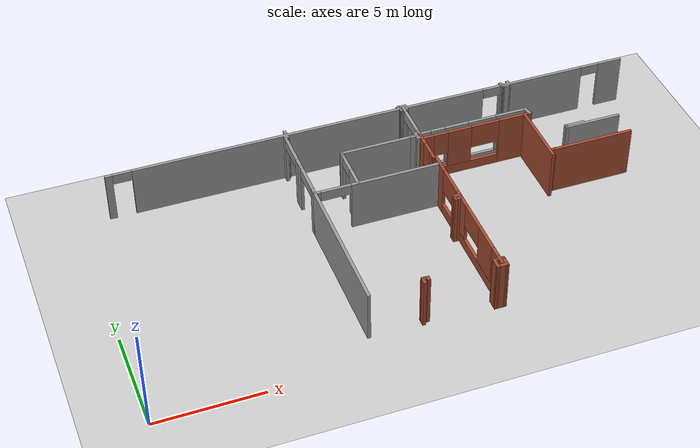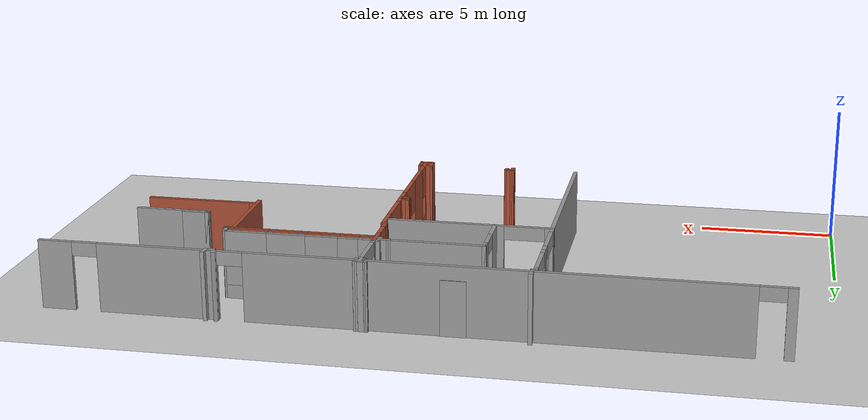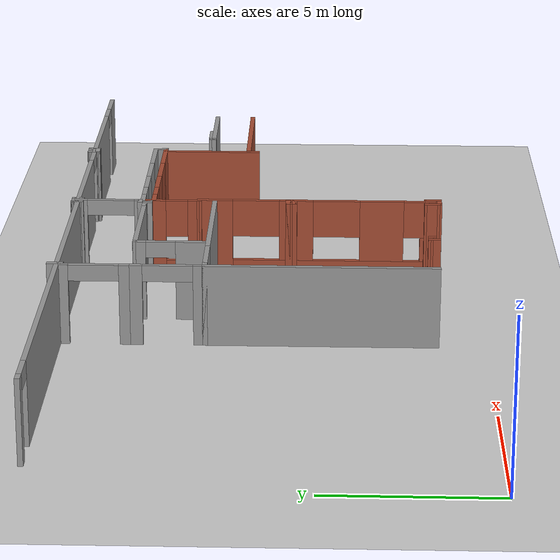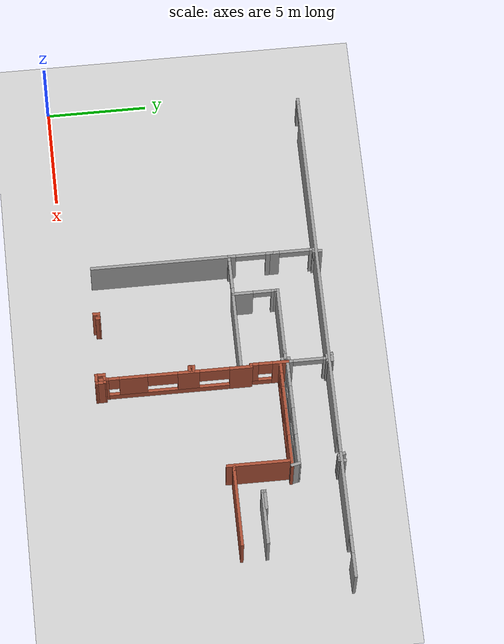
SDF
<sdf version="1.6">
 <world name="default">
  <model name="ground_plane">
   <static>1</static>
   <link name="link">
    <collision name="collision">
     <geometry><plane><normal>0 0 1</normal><size>100 100</size></plane></geometry>
     <surface><friction><ode><mu>100</mu><mu2>50</mu2></ode></friction></surface>
    </collision>
    <visual name="visual">
     <cast_shadows>0</cast_shadows>
     <geometry><plane><normal>0 0 1</normal><size>100 100</size></plane></geometry>
     <material>
      <script><uri>file://media/materials/scripts/gazebo.material</uri><name>Gazebo/Grey</name></script>
     </material>
    </visual>
   </link>
  </model>
  <model name="CVSSP">
   <pose>23.8714 24.094 0 0 -0 0</pose>
   <link name="Door_85">
    <collision name="Door_85_Collision">
     <geometry><box><size>0.9 0.17 2</size></box></geometry>
     <pose>0 0 1 0 -0 0</pose>
    </collision>
    <visual name="Door_85_Visual">
     <pose>0 0 1 0 -0 0</pose>
     <geometry><box><size>0.9 0.17 2</size></box></geometry>
     <material>
      <script><uri>file://media/materials/scripts/gazebo.material</uri><name>Gazebo/Grey</name></script>
     </material>
    </visual>
    <pose>-11.2111 -11.3756 0 0 -0 0</pose>
   </link>
   <link name="Wall_507">
    <collision name="Wall_507_Collision">
     <geometry><box><size>3.25 0.15 2.5</size></box></geometry>
     <pose>0 0 1.25 0 -0 0</pose>
    </collision>
    <visual name="Wall_507_Visual">
     <pose>0 0 1.25 0 -0 0</pose>
     <geometry><box><size>3.25 0.15 2.5</size></box></geometry>
     <material>
      <script><uri>file://media/materials/scripts/gazebo.material</uri><name>Gazebo/Bricks</name></script>
      <ambient>1 1 1 1</ambient>
     </material>
    </visual>
    <pose>-2.87053 -15.3773 0 0 -0 1.5708</pose>
   </link>
   <link name="Wall_517">
    <pose>-9.53376 -11.3942 0 0 -0 3.14159</pose>
    <visual name="Wall_517_Visual_0">
     <pose>-12.2631 0 1.25 0 -0 0</pose>
     <geometry><box><size>1.22376 0.15 2.5</size></box></geometry>
     <material>
      <script><uri>file://media/materials/scripts/gazebo.material</uri><name>Gazebo/Grey</name></script>
      <ambient>0.588235 0.588235 0.588235 1</ambient>
     </material>
    </visual>
    <collision name="Wall_517_Collision_0">
     <geometry><box><size>1.22376 0.15 2.5</size></box></geometry>
     <pose>-12.2631 0 1.25 0 -0 0</pose>
    </collision>
    <visual name="Wall_517_Visual_1">
     <pose>-8.60772 0 1.25 0 -0 0</pose>
     <geometry><box><size>4.28704 0.15 2.5</size></box></geometry>
     <material>
      <script><uri>file://media/materials/scripts/gazebo.material</uri><name>Gazebo/Grey</name></script>
      <ambient>0.588235 0.588235 0.588235 1</ambient>
     </material>
    </visual>
    <collision name="Wall_517_Collision_1">
     <geometry><box><size>4.28704 0.15 2.5</size></box></geometry>
     <pose>-8.60772 0 1.25 0 -0 0</pose>
    </collision>
    <visual name="Wall_517_Visual_2">
     <pose>3.03485 0 1.25 0 -0 0</pose>
     <geometry><box><size>17.1981 0.15 2.5</size></box></geometry>
     <material>
      <script><uri>file://media/materials/scripts/gazebo.material</uri><name>Gazebo/Grey</name></script>
      <ambient>0.588235 0.588235 0.588235 1</ambient>
     </material>
    </visual>
    <collision name="Wall_517_Collision_2">
     <geometry><box><size>17.1981 0.15 2.5</size></box></geometry>
     <pose>3.03485 0 1.25 0 -0 0</pose>
    </collision>
    <visual name="Wall_517_Visual_3">
     <pose>12.7044 0 1.25 0 -0 0</pose>
     <geometry><box><size>0.341103 0.15 2.5</size></box></geometry>
     <material>
      <script><uri>file://media/materials/scripts/gazebo.material</uri><name>Gazebo/Grey</name></script>
      <ambient>0.588235 0.588235 0.588235 1</ambient>
     </material>
    </visual>
    <collision name="Wall_517_Collision_3">
     <geometry><box><size>0.341103 0.15 2.5</size></box></geometry>
     <pose>12.7044 0 1.25 0 -0 0</pose>
    </collision>
    <visual name="Wall_517_Visual_4">
     <pose>-11.2012 0 2.25 0 -0 0</pose>
     <geometry><box><size>0.9 0.15 0.5</size></box></geometry>
     <material>
      <script><uri>file://media/materials/scripts/gazebo.material</uri><name>Gazebo/Grey</name></script>
      <ambient>0.588235 0.588235 0.588235 1</ambient>
     </material>
    </visual>
    <collision name="Wall_517_Collision_4">
     <geometry><box><size>0.9 0.15 0.5</size></box></geometry>
     <pose>-11.2012 0 2.25 0 -0 0</pose>
    </collision>
    <visual name="Wall_517_Visual_5">
     <pose>-6.0142 0 2.25 0 -0 0</pose>
     <geometry><box><size>0.9 0.15 0.5</size></box></geometry>
     <material>
      <script><uri>file://media/materials/scripts/gazebo.material</uri><name>Gazebo/Grey</name></script>
      <ambient>0.588235 0.588235 0.588235 1</ambient>
     </material>
    </visual>
    <collision name="Wall_517_Collision_5">
     <geometry><box><size>0.9 0.15 0.5</size></box></geometry>
     <pose>-6.0142 0 2.25 0 -0 0</pose>
    </collision>
    <visual name="Wall_517_Visual_6">
     <pose>12.0839 0 2.25 0 -0 0</pose>
     <geometry><box><size>0.9 0.15 0.5</size></box></geometry>
     <material>
      <script><uri>file://media/materials/scripts/gazebo.material</uri><name>Gazebo/Grey</name></script>
      <ambient>0.588235 0.588235 0.588235 1</ambient>
     </material>
    </visual>
    <collision name="Wall_517_Collision_6">
     <geometry><box><size>0.9 0.15 0.5</size></box></geometry>
     <pose>12.0839 0 2.25 0 -0 0</pose>
    </collision>
   </link>
   <link name="Wall_537">
    <pose>-8.036 -12.4082 0 0 0 -1.5708</pose>
    <visual name="Wall_537_Visual_0">
     <pose>-0.92041 0 1.25 0 -0 0</pose>
     <geometry><box><size>0.409181 0.15 2.5</size></box></geometry>
     <material>
      <script><uri>file://media/materials/scripts/gazebo.material</uri><name>Gazebo/Grey</name></script>
      <ambient>1 1 1 1</ambient>
     </material>
    </visual>
    <collision name="Wall_537_Collision_0">
     <geometry><box><size>0.409181 0.15 2.5</size></box></geometry>
     <pose>-0.92041 0 1.25 0 -0 0</pose>
    </collision>
    <visual name="Wall_537_Visual_1">
     <pose>0.95091 0 1.25 0 -0 0</pose>
     <geometry><box><size>0.34818 0.15 2.5</size></box></geometry>
     <material>
      <script><uri>file://media/materials/scripts/gazebo.material</uri><name>Gazebo/Grey</name></script>
      <ambient>1 1 1 1</ambient>
     </material>
    </visual>
    <collision name="Wall_537_Collision_1">
     <geometry><box><size>0.34818 0.15 2.5</size></box></geometry>
     <pose>0.95091 0 1.25 0 -0 0</pose>
    </collision>
    <visual name="Wall_537_Visual_2">
     <pose>0.0305 0 2.25 0 -0 0</pose>
     <geometry><box><size>1.49264 0.15 0.5</size></box></geometry>
     <material>
      <script><uri>file://media/materials/scripts/gazebo.material</uri><name>Gazebo/Grey</name></script>
      <ambient>1 1 1 1</ambient>
     </material>
    </visual>
    <collision name="Wall_537_Collision_2">
     <geometry><box><size>1.49264 0.15 0.5</size></box></geometry>
     <pose>0.0305 0 2.25 0 -0 0</pose>
    </collision>
   </link>
   <link name="Wall_538">
    <pose>-5.361 -13.4582 0 0 -0 0</pose>
    <visual name="Wall_538_Visual_0">
     <pose>-2.43267 0 1.25 0 -0 0</pose>
     <geometry><box><size>0.634665 0.15 2.5</size></box></geometry>
     <material>
      <script><uri>file://media/materials/scripts/gazebo.material</uri><name>Gazebo/Grey</name></script>
      <ambient>0.588235 0.588235 0.588235 1</ambient>
     </material>
    </visual>
    <collision name="Wall_538_Collision_0">
     <geometry><box><size>0.634665 0.15 2.5</size></box></geometry>
     <pose>-2.43267 0 1.25 0 -0 0</pose>
    </collision>
    <visual name="Wall_538_Visual_1">
     <pose>0.317332 0 0.25 0 -0 0</pose>
     <geometry><box><size>4.86533 0.15 0.5</size></box></geometry>
     <material>
      <script><uri>file://media/materials/scripts/gazebo.material</uri><name>Gazebo/Grey</name></script>
      <ambient>0.588235 0.588235 0.588235 1</ambient>
     </material>
    </visual>
    <collision name="Wall_538_Collision_1">
     <geometry><box><size>4.86533 0.15 0.5</size></box></geometry>
     <pose>0.317332 0 0.25 0 -0 0</pose>
    </collision>
    <visual name="Wall_538_Visual_2">
     <pose>-0.810818 0 1.5 0 -0 0</pose>
     <geometry><box><size>1.15893 0.15 2</size></box></geometry>
     <material>
      <script><uri>file://media/materials/scripts/gazebo.material</uri><name>Gazebo/Grey</name></script>
      <ambient>0.588235 0.588235 0.588235 1</ambient>
     </material>
    </visual>
    <collision name="Wall_538_Collision_2">
     <geometry><box><size>1.15893 0.15 2</size></box></geometry>
     <pose>-0.810818 0 1.5 0 -0 0</pose>
    </collision>
    <visual name="Wall_538_Visual_3">
     <pose>1.95518 0 1.5 0 -0 0</pose>
     <geometry><box><size>1.58965 0.15 2</size></box></geometry>
     <material>
      <script><uri>file://media/materials/scripts/gazebo.material</uri><name>Gazebo/Grey</name></script>
      <ambient>0.588235 0.588235 0.588235 1</ambient>
     </material>
    </visual>
    <collision name="Wall_538_Collision_3">
     <geometry><box><size>1.58965 0.15 2</size></box></geometry>
     <pose>1.95518 0 1.5 0 -0 0</pose>
    </collision>
    <visual name="Wall_538_Visual_4">
     <pose>-1.75281 0 1.9 0 -0 0</pose>
     <geometry><box><size>0.72505 0.15 1.2</size></box></geometry>
     <material>
      <script><uri>file://media/materials/scripts/gazebo.material</uri><name>Gazebo/Grey</name></script>
      <ambient>0.588235 0.588235 0.588235 1</ambient>
     </material>
    </visual>
    <collision name="Wall_538_Collision_4">
     <geometry><box><size>0.72505 0.15 1.2</size></box></geometry>
     <pose>-1.75281 0 1.9 0 -0 0</pose>
    </collision>
    <visual name="Wall_538_Visual_5">
     <pose>0.4645 0 1.9 0 -0 0</pose>
     <geometry><box><size>1.3917 0.15 1.2</size></box></geometry>
     <material>
      <script><uri>file://media/materials/scripts/gazebo.material</uri><name>Gazebo/Grey</name></script>
      <ambient>0.588235 0.588235 0.588235 1</ambient>
     </material>
    </visual>
    <collision name="Wall_538_Collision_5">
     <geometry><box><size>1.3917 0.15 1.2</size></box></geometry>
     <pose>0.4645 0 1.9 0 -0 0</pose>
    </collision>
   </link>
   <link name="Wall_539">
    <collision name="Wall_539_Collision">
     <geometry><box><size>0.505851 0.15 2.5</size></box></geometry>
     <pose>0 0 1.25 0 -0 0</pose>
    </collision>
    <visual name="Wall_539_Visual">
     <pose>0 0 1.25 0 -0 0</pose>
     <geometry><box><size>0.505851 0.15 2.5</size></box></geometry>
     <material>
      <script><uri>file://media/materials/scripts/gazebo.material</uri><name>Gazebo/Grey</name></script>
      <ambient>1 1 1 1</ambient>
     </material>
    </visual>
    <pose>-2.64978 -13.6324 0 0 0 -1.3658</pose>
   </link>
   <link name="Wall_541">
    <pose>-8.03948 -14.3557 0 0 0 -1.57468</pose>
    <visual name="Wall_541_Visual_0">
     <pose>-0.567331 0 1.25 0 -0 0</pose>
     <geometry><box><size>0.810426 0.15 2.5</size></box></geometry>
     <material>
      <script><uri>file://media/materials/scripts/gazebo.material</uri><name>Gazebo/Bricks</name></script>
      <ambient>1 1 1 1</ambient>
     </material>
    </visual>
    <collision name="Wall_541_Collision_0">
     <geometry><box><size>0.810426 0.15 2.5</size></box></geometry>
     <pose>-0.567331 0 1.25 0 -0 0</pose>
    </collision>
    <visual name="Wall_541_Visual_1">
     <pose>0.405213 0 0.25 0 -0 0</pose>
     <geometry><box><size>1.13466 0.15 0.5</size></box></geometry>
     <material>
      <script><uri>file://media/materials/scripts/gazebo.material</uri><name>Gazebo/Bricks</name></script>
      <ambient>1 1 1 1</ambient>
     </material>
    </visual>
    <collision name="Wall_541_Collision_1">
     <geometry><box><size>1.13466 0.15 0.5</size></box></geometry>
     <pose>0.405213 0 0.25 0 -0 0</pose>
    </collision>
    <visual name="Wall_541_Visual_2">
     <pose>0.750947 0 1.5 0 -0 0</pose>
     <geometry><box><size>0.443194 0.15 2</size></box></geometry>
     <material>
      <script><uri>file://media/materials/scripts/gazebo.material</uri><name>Gazebo/Bricks</name></script>
      <ambient>1 1 1 1</ambient>
     </material>
    </visual>
    <collision name="Wall_541_Collision_2">
     <geometry><box><size>0.443194 0.15 2</size></box></geometry>
     <pose>0.750947 0 1.5 0 -0 0</pose>
    </collision>
    <visual name="Wall_541_Visual_3">
     <pose>0.183616 0 1.9 0 -0 0</pose>
     <geometry><box><size>0.691468 0.15 1.2</size></box></geometry>
     <material>
      <script><uri>file://media/materials/scripts/gazebo.material</uri><name>Gazebo/Bricks</name></script>
      <ambient>1 1 1 1</ambient>
     </material>
    </visual>
    <collision name="Wall_541_Collision_3">
     <geometry><box><size>0.691468 0.15 1.2</size></box></geometry>
     <pose>0.183616 0 1.9 0 -0 0</pose>
    </collision>
   </link>
   <link name="Wall_542">
    <collision name="Wall_542_Collision">
     <geometry><box><size>0.25 0.15 2.5</size></box></geometry>
     <pose>0 0 1.25 0 -0 0</pose>
    </collision>
    <visual name="Wall_542_Visual">
     <pose>0 0 1.25 0 -0 0</pose>
     <geometry><box><size>0.25 0.15 2.5</size></box></geometry>
     <material>
      <script><uri>file://media/materials/scripts/gazebo.material</uri><name>Gazebo/Bricks</name></script>
      <ambient>1 1 1 1</ambient>
     </material>
    </visual>
    <pose>-7.99297 -15.2533 0 0 -0 0</pose>
   </link>
   <link name="Wall_543">
    <pose>-7.94297 -18.8033 0 0 0 -1.5708</pose>
    <visual name="Wall_543_Visual_0">
     <pose>-3.05686 0 1.25 0 -0 0</pose>
     <geometry><box><size>1.13628 0.15 2.5</size></box></geometry>
     <material>
      <script><uri>file://media/materials/scripts/gazebo.material</uri><name>Gazebo/Bricks</name></script>
      <ambient>1 1 1 1</ambient>
     </material>
    </visual>
    <collision name="Wall_543_Collision_0">
     <geometry><box><size>1.13628 0.15 2.5</size></box></geometry>
     <pose>-3.05686 0 1.25 0 -0 0</pose>
    </collision>
    <visual name="Wall_543_Visual_1">
     <pose>0.568139 0 0.25 0 -0 0</pose>
     <geometry><box><size>6.11372 0.15 0.5</size></box></geometry>
     <material>
      <script><uri>file://media/materials/scripts/gazebo.material</uri><name>Gazebo/Bricks</name></script>
      <ambient>1 1 1 1</ambient>
     </material>
    </visual>
    <collision name="Wall_543_Collision_1">
     <geometry><box><size>6.11372 0.15 0.5</size></box></geometry>
     <pose>0.568139 0 0.25 0 -0 0</pose>
    </collision>
    <visual name="Wall_543_Visual_2">
     <pose>-0.462946 0 1.5 0 -0 0</pose>
     <geometry><box><size>1.07655 0.15 2</size></box></geometry>
     <material>
      <script><uri>file://media/materials/scripts/gazebo.material</uri><name>Gazebo/Bricks</name></script>
      <ambient>1 1 1 1</ambient>
     </material>
    </visual>
    <collision name="Wall_543_Collision_2">
     <geometry><box><size>1.07655 0.15 2</size></box></geometry>
     <pose>-0.462946 0 1.5 0 -0 0</pose>
    </collision>
    <visual name="Wall_543_Visual_3">
     <pose>2.25573 0 1.5 0 -0 0</pose>
     <geometry><box><size>1.39706 0.15 2</size></box></geometry>
     <material>
      <script><uri>file://media/materials/scripts/gazebo.material</uri><name>Gazebo/Bricks</name></script>
      <ambient>1 1 1 1</ambient>
     </material>
    </visual>
    <collision name="Wall_543_Collision_3">
     <geometry><box><size>1.39706 0.15 2</size></box></geometry>
     <pose>2.25573 0 1.5 0 -0 0</pose>
    </collision>
    <visual name="Wall_543_Visual_4">
     <pose>2.25573 0 1.5 0 -0 0</pose>
     <geometry><box><size>1.39706 0.15 2</size></box></geometry>
     <material>
      <script><uri>file://media/materials/scripts/gazebo.material</uri><name>Gazebo/Bricks</name></script>
      <ambient>1 1 1 1</ambient>
     </material>
    </visual>
    <collision name="Wall_543_Collision_4">
     <geometry><box><size>1.39706 0.15 2</size></box></geometry>
     <pose>2.25573 0 1.5 0 -0 0</pose>
    </collision>
    <visual name="Wall_543_Visual_5">
     <pose>-1.74497 0 1.9 0 -0 0</pose>
     <geometry><box><size>1.4875 0.15 1.2</size></box></geometry>
     <material>
      <script><uri>file://media/materials/scripts/gazebo.material</uri><name>Gazebo/Bricks</name></script>
      <ambient>1 1 1 1</ambient>
     </material>
    </visual>
    <collision name="Wall_543_Collision_5">
     <geometry><box><size>1.4875 0.15 1.2</size></box></geometry>
     <pose>-1.74497 0 1.9 0 -0 0</pose>
    </collision>
    <visual name="Wall_543_Visual_6">
     <pose>0.816261 0 1.9 0 -0 0</pose>
     <geometry><box><size>1.48187 0.15 1.2</size></box></geometry>
     <material>
      <script><uri>file://media/materials/scripts/gazebo.material</uri><name>Gazebo/Bricks</name></script>
      <ambient>1 1 1 1</ambient>
     </material>
    </visual>
    <collision name="Wall_543_Collision_6">
     <geometry><box><size>1.48187 0.15 1.2</size></box></geometry>
     <pose>0.816261 0 1.9 0 -0 0</pose>
    </collision>
    <visual name="Wall_543_Visual_7">
     <pose>3.28963 0 1.9 0 -0 0</pose>
     <geometry><box><size>0.670742 0.15 1.2</size></box></geometry>
     <material>
      <script><uri>file://media/materials/scripts/gazebo.material</uri><name>Gazebo/Bricks</name></script>
      <ambient>1 1 1 1</ambient>
     </material>
    </visual>
    <collision name="Wall_543_Collision_7">
     <geometry><box><size>0.670742 0.15 1.2</size></box></geometry>
     <pose>3.28963 0 1.9 0 -0 0</pose>
    </collision>
    <visual name="Wall_543_Visual_8">
     <pose>3.28963 0 1.9 0 -0 0</pose>
     <geometry><box><size>0.670742 0.15 1.2</size></box></geometry>
     <material>
      <script><uri>file://media/materials/scripts/gazebo.material</uri><name>Gazebo/Bricks</name></script>
      <ambient>1 1 1 1</ambient>
     </material>
    </visual>
    <collision name="Wall_543_Collision_8">
     <geometry><box><size>0.670742 0.15 1.2</size></box></geometry>
     <pose>3.28963 0 1.9 0 -0 0</pose>
    </collision>
   </link>
   <link name="Wall_544">
    <collision name="Wall_544_Collision">
     <geometry><box><size>0.5 0.15 2.5</size></box></geometry>
     <pose>0 0 1.25 0 -0 0</pose>
    </collision>
    <visual name="Wall_544_Visual">
     <pose>0 0 1.25 0 -0 0</pose>
     <geometry><box><size>0.5 0.15 2.5</size></box></geometry>
     <material>
      <script><uri>file://media/materials/scripts/gazebo.material</uri><name>Gazebo/Bricks</name></script>
      <ambient>1 1 1 1</ambient>
     </material>
    </visual>
    <pose>-7.94297 -22.5283 0 0 0 -1.5708</pose>
   </link>
   <link name="Wall_552">
    <pose>-13.9279 -14.6858 0 0 0 -1.57076</pose>
    <visual name="Wall_552_Visual_0">
     <pose>-0.953762 0 1.25 0 -0 0</pose>
     <geometry><box><size>0.377528 0.15 2.5</size></box></geometry>
     <material>
      <script><uri>file://media/materials/scripts/gazebo.material</uri><name>Gazebo/Grey</name></script>
      <ambient>0.588235 0.588235 0.588235 1</ambient>
     </material>
    </visual>
    <collision name="Wall_552_Collision_0">
     <geometry><box><size>0.377528 0.15 2.5</size></box></geometry>
     <pose>-0.953762 0 1.25 0 -0 0</pose>
    </collision>
    <visual name="Wall_552_Visual_1">
     <pose>0.934646 0 1.25 0 -0 0</pose>
     <geometry><box><size>0.415759 0.15 2.5</size></box></geometry>
     <material>
      <script><uri>file://media/materials/scripts/gazebo.material</uri><name>Gazebo/Grey</name></script>
      <ambient>0.588235 0.588235 0.588235 1</ambient>
     </material>
    </visual>
    <collision name="Wall_552_Collision_1">
     <geometry><box><size>0.415759 0.15 2.5</size></box></geometry>
     <pose>0.934646 0 1.25 0 -0 0</pose>
    </collision>
    <visual name="Wall_552_Visual_2">
     <pose>-0.019115 0 2.25 0 -0 0</pose>
     <geometry><box><size>1.49176 0.15 0.5</size></box></geometry>
     <material>
      <script><uri>file://media/materials/scripts/gazebo.material</uri><name>Gazebo/Grey</name></script>
      <ambient>0.588235 0.588235 0.588235 1</ambient>
     </material>
    </visual>
    <collision name="Wall_552_Collision_2">
     <geometry><box><size>1.49176 0.15 0.5</size></box></geometry>
     <pose>-0.019115 0 2.25 0 -0 0</pose>
    </collision>
   </link>
   <link name="Wall_553">
    <pose>-10.9854 -15.7533 0 0 0 -3e-06</pose>
    <visual name="Wall_553_Visual_0">
     <pose>-2.85002 0 1.25 0 -0 0</pose>
     <geometry><box><size>0.334935 0.15 2.5</size></box></geometry>
     <material>
      <script><uri>file://media/materials/scripts/gazebo.material</uri><name>Gazebo/Grey</name></script>
      <ambient>0.588235 0.588235 0.588235 1</ambient>
     </material>
    </visual>
    <collision name="Wall_553_Collision_0">
     <geometry><box><size>0.334935 0.15 2.5</size></box></geometry>
     <pose>-2.85002 0 1.25 0 -0 0</pose>
    </collision>
    <visual name="Wall_553_Visual_1">
     <pose>0.893624 0 1.25 0 -0 0</pose>
     <geometry><box><size>4.24773 0.15 2.5</size></box></geometry>
     <material>
      <script><uri>file://media/materials/scripts/gazebo.material</uri><name>Gazebo/Grey</name></script>
      <ambient>0.588235 0.588235 0.588235 1</ambient>
     </material>
    </visual>
    <collision name="Wall_553_Collision_1">
     <geometry><box><size>4.24773 0.15 2.5</size></box></geometry>
     <pose>0.893624 0 1.25 0 -0 0</pose>
    </collision>
    <visual name="Wall_553_Visual_2">
     <pose>-1.9564 0 2.25 0 -0 0</pose>
     <geometry><box><size>1.45231 0.15 0.5</size></box></geometry>
     <material>
      <script><uri>file://media/materials/scripts/gazebo.material</uri><name>Gazebo/Grey</name></script>
      <ambient>0.588235 0.588235 0.588235 1</ambient>
     </material>
    </visual>
    <collision name="Wall_553_Collision_2">
     <geometry><box><size>1.45231 0.15 0.5</size></box></geometry>
     <pose>-1.9564 0 2.25 0 -0 0</pose>
    </collision>
   </link>
   <link name="Wall_555">
    <pose>-13.9279 -12.5683 0 0 -0 1.5708</pose>
    <visual name="Wall_555_Visual_0">
     <pose>-0.893147 0 1.25 0 -0 0</pose>
     <geometry><box><size>0.463706 0.15 2.5</size></box></geometry>
     <material>
      <script><uri>file://media/materials/scripts/gazebo.material</uri><name>Gazebo/Grey</name></script>
      <ambient>0.588235 0.588235 0.588235 1</ambient>
     </material>
    </visual>
    <collision name="Wall_555_Collision_0">
     <geometry><box><size>0.463706 0.15 2.5</size></box></geometry>
     <pose>-0.893147 0 1.25 0 -0 0</pose>
    </collision>
    <visual name="Wall_555_Visual_1">
     <pose>0.977735 0 1.25 0 -0 0</pose>
     <geometry><box><size>0.29453 0.15 2.5</size></box></geometry>
     <material>
      <script><uri>file://media/materials/scripts/gazebo.material</uri><name>Gazebo/Grey</name></script>
      <ambient>0.588235 0.588235 0.588235 1</ambient>
     </material>
    </visual>
    <collision name="Wall_555_Collision_1">
     <geometry><box><size>0.29453 0.15 2.5</size></box></geometry>
     <pose>0.977735 0 1.25 0 -0 0</pose>
    </collision>
    <visual name="Wall_555_Visual_2">
     <pose>0.084588 0 2.25 0 -0 0</pose>
     <geometry><box><size>1.49177 0.15 0.5</size></box></geometry>
     <material>
      <script><uri>file://media/materials/scripts/gazebo.material</uri><name>Gazebo/Grey</name></script>
      <ambient>0.588235 0.588235 0.588235 1</ambient>
     </material>
    </visual>
    <collision name="Wall_555_Collision_2">
     <geometry><box><size>1.49177 0.15 0.5</size></box></geometry>
     <pose>0.084588 0 2.25 0 -0 0</pose>
    </collision>
   </link>
   <link name="Wall_556">
    <collision name="Wall_556_Collision">
     <geometry><box><size>0.25 0.15 2.5</size></box></geometry>
     <pose>0 0 1.25 0 -0 0</pose>
    </collision>
    <visual name="Wall_556_Visual">
     <pose>0 0 1.25 0 -0 0</pose>
     <geometry><box><size>0.25 0.15 2.5</size></box></geometry>
     <material>
      <script><uri>file://media/materials/scripts/gazebo.material</uri><name>Gazebo/Grey</name></script>
      <ambient>1 1 1 1</ambient>
     </material>
    </visual>
    <pose>-13.8779 -11.5183 0 0 -0 0</pose>
   </link>
   <link name="Wall_557">
    <collision name="Wall_557_Collision">
     <geometry><box><size>0.5 0.15 2.5</size></box></geometry>
     <pose>0 0 1.25 0 -0 0</pose>
    </collision>
    <visual name="Wall_557_Visual">
     <pose>0 0 1.25 0 -0 0</pose>
     <geometry><box><size>0.5 0.15 2.5</size></box></geometry>
     <material>
      <script><uri>file://media/materials/scripts/gazebo.material</uri><name>Gazebo/Grey</name></script>
      <ambient>1 1 1 1</ambient>
     </material>
    </visual>
    <pose>-13.8279 -11.3433 0 0 -0 1.5708</pose>
   </link>
   <link name="Wall_566">
    <pose>-11.8858 -14.6877 0 0 -0 1.5708</pose>
    <visual name="Wall_566_Visual_0">
     <pose>-0.599474 0 1.25 0 -0 0</pose>
     <geometry><box><size>1.05105 0.15 2.5</size></box></geometry>
     <material>
      <script><uri>file://media/materials/scripts/gazebo.material</uri><name>Gazebo/Grey</name></script>
      <ambient>0.588235 0.588235 0.588235 1</ambient>
     </material>
    </visual>
    <collision name="Wall_566_Collision_0">
     <geometry><box><size>1.05105 0.15 2.5</size></box></geometry>
     <pose>-0.599474 0 1.25 0 -0 0</pose>
    </collision>
    <visual name="Wall_566_Visual_1">
     <pose>0.975526 0 1.25 0 -0 0</pose>
     <geometry><box><size>0.298948 0.15 2.5</size></box></geometry>
     <material>
      <script><uri>file://media/materials/scripts/gazebo.material</uri><name>Gazebo/Grey</name></script>
      <ambient>0.588235 0.588235 0.588235 1</ambient>
     </material>
    </visual>
    <collision name="Wall_566_Collision_1">
     <geometry><box><size>0.298948 0.15 2.5</size></box></geometry>
     <pose>0.975526 0 1.25 0 -0 0</pose>
    </collision>
    <visual name="Wall_566_Visual_2">
     <pose>0.376052 0 2.25 0 -0 0</pose>
     <geometry><box><size>0.9 0.15 0.5</size></box></geometry>
     <material>
      <script><uri>file://media/materials/scripts/gazebo.material</uri><name>Gazebo/Grey</name></script>
      <ambient>0.588235 0.588235 0.588235 1</ambient>
     </material>
    </visual>
    <collision name="Wall_566_Collision_2">
     <geometry><box><size>0.9 0.15 0.5</size></box></geometry>
     <pose>0.376052 0 2.25 0 -0 0</pose>
    </collision>
   </link>
   <link name="Wall_567">
    <collision name="Wall_567_Collision">
     <geometry><box><size>0.25 0.15 2.5</size></box></geometry>
     <pose>0 0 1.25 0 -0 0</pose>
    </collision>
    <visual name="Wall_567_Visual">
     <pose>0 0 1.25 0 -0 0</pose>
     <geometry><box><size>0.25 0.15 2.5</size></box></geometry>
     <material>
      <script><uri>file://media/materials/scripts/gazebo.material</uri><name>Gazebo/Grey</name></script>
      <ambient>1 1 1 1</ambient>
     </material>
    </visual>
    <pose>-11.8858 -13.5877 0 0 -0 1.5708</pose>
   </link>
   <link name="Wall_568">
    <collision name="Wall_568_Collision">
     <geometry><box><size>3.5 0.15 2.5</size></box></geometry>
     <pose>0 0 1.25 0 -0 0</pose>
    </collision>
    <visual name="Wall_568_Visual">
     <pose>0 0 1.25 0 -0 0</pose>
     <geometry><box><size>3.5 0.15 2.5</size></box></geometry>
     <material>
      <script><uri>file://media/materials/scripts/gazebo.material</uri><name>Gazebo/Grey</name></script>
      <ambient>0.588235 0.588235 0.588235 1</ambient>
     </material>
    </visual>
    <pose>-10.2108 -13.5377 0 0 -0 0</pose>
   </link>
   <link name="Wall_569">
    <collision name="Wall_569_Collision">
     <geometry><box><size>0.476583 0.15 2.5</size></box></geometry>
     <pose>0 0 1.25 0 -0 0</pose>
    </collision>
    <visual name="Wall_569_Visual">
     <pose>0 0 1.25 0 -0 0</pose>
     <geometry><box><size>0.476583 0.15 2.5</size></box></geometry>
     <material>
      <script><uri>file://media/materials/scripts/gazebo.material</uri><name>Gazebo/Grey</name></script>
      <ambient>1 1 1 1</ambient>
     </material>
    </visual>
    <pose>-8.37248 -13.54 0 0 0 -0.014239</pose>
   </link>
   <link name="Wall_570">
    <collision name="Wall_570_Collision">
     <geometry><box><size>0.307067 0.15 2.5</size></box></geometry>
     <pose>0 0 1.25 0 -0 0</pose>
    </collision>
    <visual name="Wall_570_Visual">
     <pose>0 0 1.25 0 -0 0</pose>
     <geometry><box><size>0.307067 0.15 2.5</size></box></geometry>
     <material>
      <script><uri>file://media/materials/scripts/gazebo.material</uri><name>Gazebo/Grey</name></script>
      <ambient>1 1 1 1</ambient>
     </material>
    </visual>
    <pose>-8.20921 -13.6208 0 0 0 -1.5708</pose>
   </link>
   <link name="Wall_571">
    <collision name="Wall_571_Collision">
     <geometry><box><size>0.25 0.15 2.5</size></box></geometry>
     <pose>0 0 1.25 0 -0 0</pose>
    </collision>
    <visual name="Wall_571_Visual">
     <pose>0 0 1.25 0 -0 0</pose>
     <geometry><box><size>0.25 0.15 2.5</size></box></geometry>
     <material>
      <script><uri>file://media/materials/scripts/gazebo.material</uri><name>Gazebo/Grey</name></script>
      <ambient>1 1 1 1</ambient>
     </material>
    </visual>
    <pose>-8.15921 -13.695 0 0 -0 0</pose>
   </link>
   <link name="Wall_575">
    <collision name="Wall_575_Collision">
     <geometry><box><size>0.275673 0.15 2.5</size></box></geometry>
     <pose>0 0 1.25 0 -0 0</pose>
    </collision>
    <visual name="Wall_575_Visual">
     <pose>0 0 1.25 0 -0 0</pose>
     <geometry><box><size>0.275673 0.15 2.5</size></box></geometry>
     <material>
      <script><uri>file://media/materials/scripts/gazebo.material</uri><name>Gazebo/Grey</name></script>
      <ambient>1 1 1 1</ambient>
     </material>
    </visual>
    <pose>-8.20032 -13.4387 0 0 -0 1.5708</pose>
   </link>
   <link name="Wall_576">
    <collision name="Wall_576_Collision">
     <geometry><box><size>0.309961 0.15 2.5</size></box></geometry>
     <pose>0 0 1.25 0 -0 0</pose>
    </collision>
    <visual name="Wall_576_Visual">
     <pose>0 0 1.25 0 -0 0</pose>
     <geometry><box><size>0.309961 0.15 2.5</size></box></geometry>
     <material>
      <script><uri>file://media/materials/scripts/gazebo.material</uri><name>Gazebo/Grey</name></script>
      <ambient>1 1 1 1</ambient>
     </material>
    </visual>
    <pose>-8.12034 -13.3761 0 0 -0 0</pose>
   </link>
   <link name="Wall_578">
    <collision name="Wall_578_Collision">
     <geometry><box><size>7 0.15 2.5</size></box></geometry>
     <pose>0 0 1.25 0 -0 0</pose>
    </collision>
    <visual name="Wall_578_Visual">
     <pose>0 0 1.25 0 -0 0</pose>
     <geometry><box><size>7 0.15 2.5</size></box></geometry>
     <material>
      <script><uri>file://media/materials/scripts/gazebo.material</uri><name>Gazebo/Grey</name></script>
      <ambient>0.588235 0.588235 0.588235 1</ambient>
     </material>
    </visual>
    <pose>-13.9279 -19.1783 0 0 0 -1.5708</pose>
   </link>
   <link name="Wall_596">
    <collision name="Wall_596_Collision">
     <geometry><box><size>4 0.15 2.5</size></box></geometry>
     <pose>0 0 1.25 0 -0 0</pose>
    </collision>
    <visual name="Wall_596_Visual">
     <pose>0 0 1.25 0 -0 0</pose>
     <geometry><box><size>4 0.15 2.5</size></box></geometry>
     <material>
      <script><uri>file://media/materials/scripts/gazebo.material</uri><name>Gazebo/Bricks</name></script>
      <ambient>1 1 1 1</ambient>
     </material>
    </visual>
    <pose>-0.740764 -16.6286 0 0 -0 0</pose>
   </link>
   <link name="Wall_600">
    <collision name="Wall_600_Collision">
     <geometry><box><size>2.75 0.15 2.5</size></box></geometry>
     <pose>0 0 1.25 0 -0 0</pose>
    </collision>
    <visual name="Wall_600_Visual">
     <pose>0 0 1.25 0 -0 0</pose>
     <geometry><box><size>2.75 0.15 2.5</size></box></geometry>
     <material>
      <script><uri>file://media/materials/scripts/gazebo.material</uri><name>Gazebo/Grey</name></script>
      <ambient>0.588235 0.588235 0.588235 1</ambient>
     </material>
    </visual>
    <pose>-0.115764 -15.3784 0 0 -0 3.14159</pose>
   </link>
   <link name="Wall_601">
    <collision name="Wall_601_Collision">
     <geometry><box><size>0.25 0.15 2.5</size></box></geometry>
     <pose>0 0 1.25 0 -0 0</pose>
    </collision>
    <visual name="Wall_601_Visual">
     <pose>0 0 1.25 0 -0 0</pose>
     <geometry><box><size>0.25 0.15 2.5</size></box></geometry>
     <material>
      <script><uri>file://media/materials/scripts/gazebo.material</uri><name>Gazebo/Grey</name></script>
      <ambient>1 1 1 1</ambient>
     </material>
    </visual>
    <pose>-1.41576 -15.3284 0 0 -0 1.5708</pose>
   </link>
   <link name="Wall_602">
    <collision name="Wall_602_Collision">
     <geometry><box><size>1 0.15 2.5</size></box></geometry>
     <pose>0 0 1.25 0 -0 0</pose>
    </collision>
    <visual name="Wall_602_Visual">
     <pose>0 0 1.25 0 -0 0</pose>
     <geometry><box><size>1 0.15 2.5</size></box></geometry>
     <material>
      <script><uri>file://media/materials/scripts/gazebo.material</uri><name>Gazebo/Grey</name></script>
      <ambient>0.588235 0.588235 0.588235 1</ambient>
     </material>
    </visual>
    <pose>-0.990764 -15.2784 0 0 -0 0</pose>
   </link>
   <link name="Wall_819">
    <collision name="Wall_819_Collision">
     <geometry><box><size>0.25 0.15 2.5</size></box></geometry>
     <pose>0 0 1.25 0 -0 0</pose>
    </collision>
    <visual name="Wall_819_Visual">
     <pose>0 0 1.25 0 -0 0</pose>
     <geometry><box><size>0.25 0.15 2.5</size></box></geometry>
     <material>
      <script><uri>file://media/materials/scripts/gazebo.material</uri><name>Gazebo/Bricks</name></script>
      <ambient>1 1 1 1</ambient>
     </material>
    </visual>
    <pose>-2.71576 -16.6286 0 0 -0 3.14159</pose>
   </link>
   <link name="Wall_821">
    <pose>-5.27357 -13.8066 0 0 -0 3.14159</pose>
    <visual name="Wall_821_Visual_0">
     <pose>-1.9171 0 1.25 0 -0 0</pose>
     <geometry><box><size>1.66581 0.15 2.5</size></box></geometry>
     <material>
      <script><uri>file://media/materials/scripts/gazebo.material</uri><name>Gazebo/Bricks</name></script>
      <ambient>1 1 1 1</ambient>
     </material>
    </visual>
    <collision name="Wall_821_Collision_0">
     <geometry><box><size>1.66581 0.15 2.5</size></box></geometry>
     <pose>-1.9171 0 1.25 0 -0 0</pose>
    </collision>
    <visual name="Wall_821_Visual_1">
     <pose>0.832904 0 0.25 0 -0 0</pose>
     <geometry><box><size>3.83419 0.15 0.5</size></box></geometry>
     <material>
      <script><uri>file://media/materials/scripts/gazebo.material</uri><name>Gazebo/Bricks</name></script>
      <ambient>1 1 1 1</ambient>
     </material>
    </visual>
    <collision name="Wall_821_Collision_1">
     <geometry><box><size>3.83419 0.15 0.5</size></box></geometry>
     <pose>0.832904 0 0.25 0 -0 0</pose>
    </collision>
    <visual name="Wall_821_Visual_2">
     <pose>0.892612 0 1.5 0 -0 0</pose>
     <geometry><box><size>1.1702 0.15 2</size></box></geometry>
     <material>
      <script><uri>file://media/materials/scripts/gazebo.material</uri><name>Gazebo/Bricks</name></script>
      <ambient>1 1 1 1</ambient>
     </material>
    </visual>
    <collision name="Wall_821_Collision_2">
     <geometry><box><size>1.1702 0.15 2</size></box></geometry>
     <pose>0.892612 0 1.5 0 -0 0</pose>
    </collision>
    <visual name="Wall_821_Visual_3">
     <pose>2.46889 0 1.5 0 -0 0</pose>
     <geometry><box><size>0.562226 0.15 2</size></box></geometry>
     <material>
      <script><uri>file://media/materials/scripts/gazebo.material</uri><name>Gazebo/Bricks</name></script>
      <ambient>1 1 1 1</ambient>
     </material>
    </visual>
    <collision name="Wall_821_Collision_3">
     <geometry><box><size>0.562226 0.15 2</size></box></geometry>
     <pose>2.46889 0 1.5 0 -0 0</pose>
    </collision>
    <visual name="Wall_821_Visual_4">
     <pose>-0.388341 0 1.9 0 -0 0</pose>
     <geometry><box><size>1.3917 0.15 1.2</size></box></geometry>
     <material>
      <script><uri>file://media/materials/scripts/gazebo.material</uri><name>Gazebo/Bricks</name></script>
      <ambient>1 1 1 1</ambient>
     </material>
    </visual>
    <collision name="Wall_821_Collision_4">
     <geometry><box><size>1.3917 0.15 1.2</size></box></geometry>
     <pose>-0.388341 0 1.9 0 -0 0</pose>
    </collision>
    <visual name="Wall_821_Visual_5">
     <pose>1.83274 0 1.9 0 -0 0</pose>
     <geometry><box><size>0.71006 0.15 1.2</size></box></geometry>
     <material>
      <script><uri>file://media/materials/scripts/gazebo.material</uri><name>Gazebo/Bricks</name></script>
      <ambient>1 1 1 1</ambient>
     </material>
    </visual>
    <collision name="Wall_821_Collision_5">
     <geometry><box><size>0.71006 0.15 1.2</size></box></geometry>
     <pose>1.83274 0 1.9 0 -0 0</pose>
    </collision>
   </link>
   <link name="Wall_823">
    <collision name="Wall_823_Collision">
     <geometry><box><size>0.378662 0.15 2.5</size></box></geometry>
     <pose>0 0 1.25 0 -0 0</pose>
    </collision>
    <visual name="Wall_823_Visual">
     <pose>0 0 1.25 0 -0 0</pose>
     <geometry><box><size>0.378662 0.15 2.5</size></box></geometry>
     <material>
      <script><uri>file://media/materials/scripts/gazebo.material</uri><name>Gazebo/Bricks</name></script>
      <ambient>1 1 1 1</ambient>
     </material>
    </visual>
    <pose>-8.09894 -18.0783 0 0 -0 3.14159</pose>
   </link>
   <link name="Wall_824">
    <collision name="Wall_824_Collision">
     <geometry><box><size>0.361804 0.15 2.5</size></box></geometry>
     <pose>0 0 1.25 0 -0 0</pose>
    </collision>
    <visual name="Wall_824_Visual">
     <pose>0 0 1.25 0 -0 0</pose>
     <geometry><box><size>0.361804 0.15 2.5</size></box></geometry>
     <material>
      <script><uri>file://media/materials/scripts/gazebo.material</uri><name>Gazebo/Bricks</name></script>
      <ambient>1 1 1 1</ambient>
     </material>
    </visual>
    <pose>-8.21327 -18.1839 0 0 0 -1.5708</pose>
   </link>
   <link name="Wall_825">
    <collision name="Wall_825_Collision">
     <geometry><box><size>0.396251 0.15 2.5</size></box></geometry>
     <pose>0 0 1.25 0 -0 0</pose>
    </collision>
    <visual name="Wall_825_Visual">
     <pose>0 0 1.25 0 -0 0</pose>
     <geometry><box><size>0.396251 0.15 2.5</size></box></geometry>
     <material>
      <script><uri>file://media/materials/scripts/gazebo.material</uri><name>Gazebo/Bricks</name></script>
      <ambient>1 1 1 1</ambient>
     </material>
    </visual>
    <pose>-8.09015 -18.2894 0 0 -0 0</pose>
   </link>
   <link name="Wall_827">
    <collision name="Wall_827_Collision">
     <geometry><box><size>0.554556 0.15 2.5</size></box></geometry>
     <pose>0 0 1.25 0 -0 0</pose>
    </collision>
    <visual name="Wall_827_Visual">
     <pose>0 0 1.25 0 -0 0</pose>
     <geometry><box><size>0.554556 0.15 2.5</size></box></geometry>
     <material>
      <script><uri>file://media/materials/scripts/gazebo.material</uri><name>Gazebo/Bricks</name></script>
      <ambient>1 1 1 1</ambient>
     </material>
    </visual>
    <pose>-7.99341 -22.4757 0 0 -0 0</pose>
   </link>
   <link name="Wall_828">
    <collision name="Wall_828_Collision">
     <geometry><box><size>0.553944 0.15 2.5</size></box></geometry>
     <pose>0 0 1.25 0 -0 0</pose>
    </collision>
    <visual name="Wall_828_Visual">
     <pose>0 0 1.25 0 -0 0</pose>
     <geometry><box><size>0.553944 0.15 2.5</size></box></geometry>
     <material>
      <script><uri>file://media/materials/scripts/gazebo.material</uri><name>Gazebo/Bricks</name></script>
      <ambient>1 1 1 1</ambient>
     </material>
    </visual>
    <pose>-7.78894 -22.6776 0 0 0 -1.55999</pose>
   </link>
   <link name="Wall_829">
    <collision name="Wall_829_Collision">
     <geometry><box><size>0.560707 0.15 2.5</size></box></geometry>
     <pose>0 0 1.25 0 -0 0</pose>
    </collision>
    <visual name="Wall_829_Visual">
     <pose>0 0 1.25 0 -0 0</pose>
     <geometry><box><size>0.560707 0.15 2.5</size></box></geometry>
     <material>
      <script><uri>file://media/materials/scripts/gazebo.material</uri><name>Gazebo/Bricks</name></script>
      <ambient>1 1 1 1</ambient>
     </material>
    </visual>
    <pose>-7.99208 -22.8796 0 0 -0 3.14159</pose>
   </link>
   <link name="Wall_830">
    <collision name="Wall_830_Collision">
     <geometry><box><size>0.553924 0.15 2.5</size></box></geometry>
     <pose>0 0 1.25 0 -0 0</pose>
    </collision>
    <visual name="Wall_830_Visual">
     <pose>0 0 1.25 0 -0 0</pose>
     <geometry><box><size>0.553924 0.15 2.5</size></box></geometry>
     <material>
      <script><uri>file://media/materials/scripts/gazebo.material</uri><name>Gazebo/Bricks</name></script>
      <ambient>1 1 1 1</ambient>
     </material>
    </visual>
    <pose>-8.19654 -22.6776 0 0 -0 1.56655</pose>
   </link>
   <link name="Wall_832">
    <collision name="Wall_832_Collision">
     <geometry><box><size>0.385035 0.15 2.5</size></box></geometry>
     <pose>0 0 1.25 0 -0 0</pose>
    </collision>
    <visual name="Wall_832_Visual">
     <pose>0 0 1.25 0 -0 0</pose>
     <geometry><box><size>0.385035 0.15 2.5</size></box></geometry>
     <material>
      <script><uri>file://media/materials/scripts/gazebo.material</uri><name>Gazebo/Bricks</name></script>
      <ambient>1 1 1 1</ambient>
     </material>
    </visual>
    <pose>-11.4605 -22.5865 0 0 -0 1.56414</pose>
   </link>
   <link name="Wall_833">
    <collision name="Wall_833_Collision">
     <geometry><box><size>0.378258 0.15 2.5</size></box></geometry>
     <pose>0 0 1.25 0 -0 0</pose>
    </collision>
    <visual name="Wall_833_Visual">
     <pose>0 0 1.25 0 -0 0</pose>
     <geometry><box><size>0.378258 0.15 2.5</size></box></geometry>
     <material>
      <script><uri>file://media/materials/scripts/gazebo.material</uri><name>Gazebo/Bricks</name></script>
      <ambient>1 1 1 1</ambient>
     </material>
    </visual>
    <pose>-11.3456 -22.4728 0 0 0 -0.033321</pose>
   </link>
   <link name="Wall_834">
    <collision name="Wall_834_Collision">
     <geometry><box><size>0.25 0.15 2.5</size></box></geometry>
     <pose>0 0 1.25 0 -0 0</pose>
    </collision>
    <visual name="Wall_834_Visual">
     <pose>0 0 1.25 0 -0 0</pose>
     <geometry><box><size>0.25 0.15 2.5</size></box></geometry>
     <material>
      <script><uri>file://media/materials/scripts/gazebo.material</uri><name>Gazebo/Bricks</name></script>
      <ambient>1 1 1 1</ambient>
     </material>
    </visual>
    <pose>-11.2315 -22.5266 0 0 0 -1.5708</pose>
   </link>
   <link name="Wall_844">
    <collision name="Wall_844_Collision">
     <geometry><box><size>0.487216 0.15 2.5</size></box></geometry>
     <pose>0 0 1.25 0 -0 0</pose>
    </collision>
    <visual name="Wall_844_Visual">
     <pose>0 0 1.25 0 -0 0</pose>
     <geometry><box><size>0.487216 0.15 2.5</size></box></geometry>
     <material>
      <script><uri>file://media/materials/scripts/gazebo.material</uri><name>Gazebo/Grey</name></script>
      <ambient>1 1 1 1</ambient>
     </material>
    </visual>
    <pose>-8.08094 -11.2624 0 0 -0 0</pose>
   </link>
   <link name="Wall_845">
    <collision name="Wall_845_Collision">
     <geometry><box><size>0.383617 0.15 2.5</size></box></geometry>
     <pose>0 0 1.25 0 -0 0</pose>
    </collision>
    <visual name="Wall_845_Visual">
     <pose>0 0 1.25 0 -0 0</pose>
     <geometry><box><size>0.383617 0.15 2.5</size></box></geometry>
     <material>
      <script><uri>file://media/materials/scripts/gazebo.material</uri><name>Gazebo/Grey</name></script>
      <ambient>1 1 1 1</ambient>
     </material>
    </visual>
    <pose>-7.91666 -11.3791 0 0 0 -1.60782</pose>
   </link>
   <link name="Wall_846">
    <collision name="Wall_846_Collision">
     <geometry><box><size>0.409541 0.15 2.5</size></box></geometry>
     <pose>0 0 1.25 0 -0 0</pose>
    </collision>
    <visual name="Wall_846_Visual">
     <pose>0 0 1.25 0 -0 0</pose>
     <geometry><box><size>0.409541 0.15 2.5</size></box></geometry>
     <material>
      <script><uri>file://media/materials/scripts/gazebo.material</uri><name>Gazebo/Grey</name></script>
      <ambient>1 1 1 1</ambient>
     </material>
    </visual>
    <pose>-8.05068 -11.4958 0 0 -0 3.14159</pose>
   </link>
   <link name="Wall_847">
    <collision name="Wall_847_Collision">
     <geometry><box><size>0.393489 0.15 2.5</size></box></geometry>
     <pose>0 0 1.25 0 -0 0</pose>
    </collision>
    <visual name="Wall_847_Visual">
     <pose>0 0 1.25 0 -0 0</pose>
     <geometry><box><size>0.393489 0.15 2.5</size></box></geometry>
     <material>
      <script><uri>file://media/materials/scripts/gazebo.material</uri><name>Gazebo/Grey</name></script>
      <ambient>1 1 1 1</ambient>
     </material>
    </visual>
    <pose>-8.21497 -11.3791 0 0 -0 1.85885</pose>
   </link>
   <link name="Wall_850">
    <collision name="Wall_850_Collision">
     <geometry><box><size>0.394561 0.15 2.5</size></box></geometry>
     <pose>0 0 1.25 0 -0 0</pose>
    </collision>
    <visual name="Wall_850_Visual">
     <pose>0 0 1.25 0 -0 0</pose>
     <geometry><box><size>0.394561 0.15 2.5</size></box></geometry>
     <material>
      <script><uri>file://media/materials/scripts/gazebo.material</uri><name>Gazebo/Grey</name></script>
      <ambient>1 1 1 1</ambient>
     </material>
    </visual>
    <pose>-2.63794 -11.3661 0 0 0 -1.71269</pose>
   </link>
   <link name="Wall_851">
    <collision name="Wall_851_Collision">
     <geometry><box><size>0.400899 0.15 2.5</size></box></geometry>
     <pose>0 0 1.25 0 -0 0</pose>
    </collision>
    <visual name="Wall_851_Visual">
     <pose>0 0 1.25 0 -0 0</pose>
     <geometry><box><size>0.400899 0.15 2.5</size></box></geometry>
     <material>
      <script><uri>file://media/materials/scripts/gazebo.material</uri><name>Gazebo/Grey</name></script>
      <ambient>1 1 1 1</ambient>
     </material>
    </visual>
    <pose>-2.78061 -11.4915 0 0 0 -3.10712</pose>
   </link>
   <link name="Wall_852">
    <collision name="Wall_852_Collision">
     <geometry><box><size>0.412548 0.15 2.5</size></box></geometry>
     <pose>0 0 1.25 0 -0 0</pose>
    </collision>
    <visual name="Wall_852_Visual">
     <pose>0 0 1.25 0 -0 0</pose>
     <geometry><box><size>0.412548 0.15 2.5</size></box></geometry>
     <material>
      <script><uri>file://media/materials/scripts/gazebo.material</uri><name>Gazebo/Grey</name></script>
      <ambient>1 1 1 1</ambient>
     </material>
    </visual>
    <pose>-2.94489 -11.3705 0 0 -0 1.87172</pose>
   </link>
   <static>1</static>
  </model>
 </world>
</sdf>
